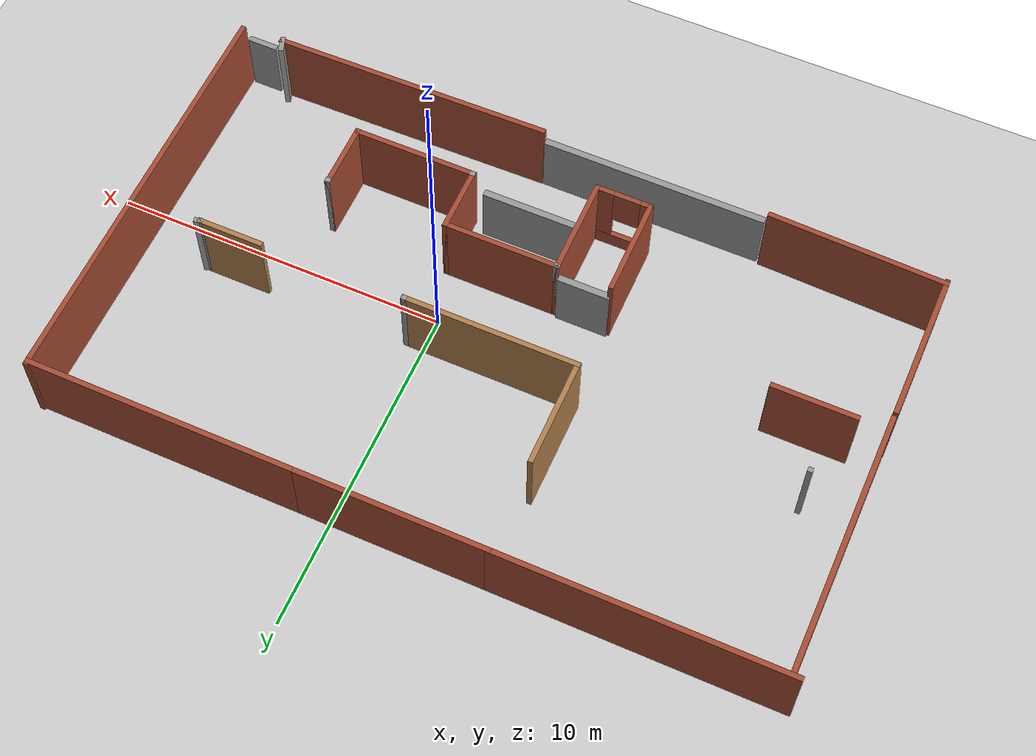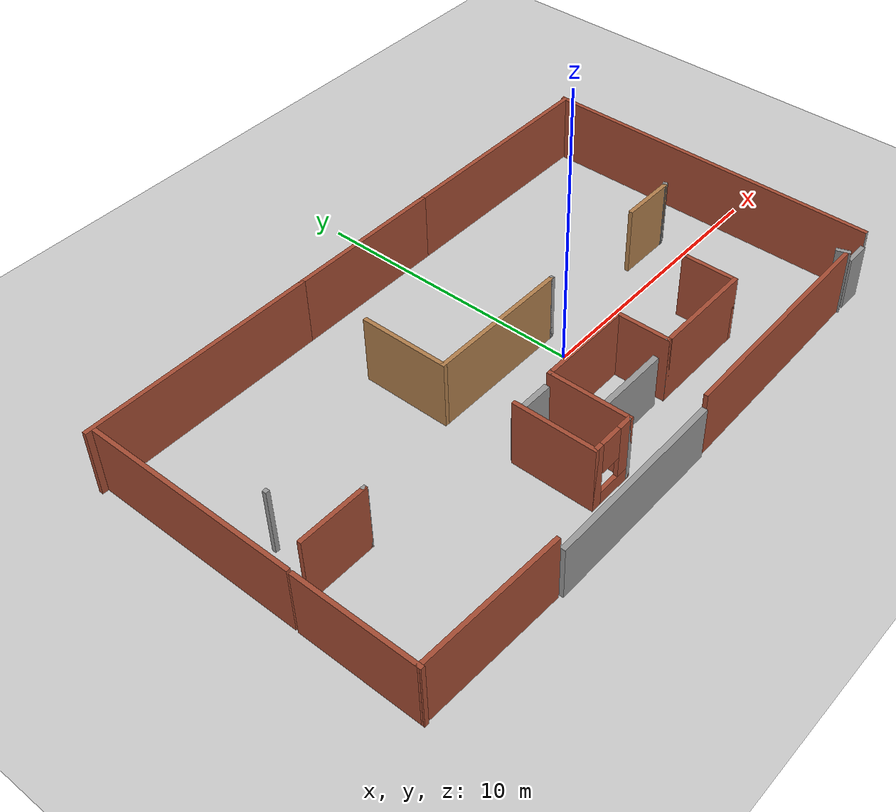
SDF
<sdf version="1.7">
 <world name="default">
  <light name="sun" type="directional">
   <pose>0 0 10 0 -0 0</pose>
   <diffuse>0.8 0.8 0.8 1</diffuse>
   <specular>0.2 0.2 0.2 1</specular>
   <attenuation>
    <range>1000</range>
    <constant>0.9</constant>
    <linear>0.01</linear>
    <quadratic>0.001</quadratic>
   </attenuation>
   <direction>-0.5 0.1 -0.9</direction>
   <spot><inner_angle>0</inner_angle><outer_angle>0</outer_angle><falloff>0</falloff></spot>
  </light>
  <model name="ground_plane">
   <static>1</static>
   <link name="link">
    <collision name="collision">
     <geometry><plane><normal>0 0 1</normal><size>100 100</size></plane></geometry>
     <surface>
      <contact><collide_bitmask>65535</collide_bitmask></contact>
      <friction><ode><mu>100</mu><mu2>50</mu2></ode></friction>
     </surface>
    </collision>
    <visual name="visual">
     <cast_shadows>0</cast_shadows>
     <geometry><plane><normal>0 0 1</normal><size>100 100</size></plane></geometry>
     <material>
      <script><uri>file://media/materials/scripts/gazebo.material</uri><name>Gazebo/Grey</name></script>
     </material>
    </visual>
   </link>
  </model>
  <gravity>0 0 -9.8</gravity>
  <magnetic_field>6e-06 2.3e-05 -4.2e-05</magnetic_field>
  <atmosphere type="adiabatic"/>
  <physics type="ode">
   <max_step_size>0.001</max_step_size>
   <real_time_factor>1</real_time_factor>
   <real_time_update_rate>1000</real_time_update_rate>
  </physics>
  <scene><ambient>0.4 0.4 0.4 1</ambient><background>0.7 0.7 0.7 1</background><shadows>1</shadows></scene>
  <audio><device>default</device></audio>
  <spherical_coordinates>
   <surface_model>EARTH_WGS84</surface_model>
   <latitude_deg>0</latitude_deg>
   <longitude_deg>0</longitude_deg>
   <elevation>0</elevation>
   <heading_deg>0</heading_deg>
  </spherical_coordinates>
  <model name="navigationbuilding">
   <pose>-2.08608 0.60546 0 0 -0 0</pose>
   <link name="Door_0">
    <collision name="Door_0_Collision">
     <geometry><box><size>1.54729 0.2 2</size></box></geometry>
     <pose>0 0 1 0 -0 0</pose>
    </collision>
    <visual name="Door_0_Visual">
     <pose>0 0 1 0 -0 0</pose>
     <geometry><box><size>1.54729 0.2 2</size></box></geometry>
     <material>
      <script><uri>file://media/materials/scripts/gazebo.material</uri><name>Gazebo/Grey</name></script>
     </material>
    </visual>
    <pose>-1.63643 -2.22062 0 0 -0 0</pose>
   </link>
   <link name="Door_1">
    <collision name="Door_1_Collision">
     <geometry><box><size>6.68515 0.2 2</size></box></geometry>
     <pose>0 0 1 0 -0 0</pose>
    </collision>
    <visual name="Door_1_Visual">
     <pose>0 0 1 0 -0 0</pose>
     <geometry><box><size>6.68515 0.2 2</size></box></geometry>
     <material>
      <script><uri>file://media/materials/scripts/gazebo.material</uri><name>Gazebo/Grey</name></script>
     </material>
    </visual>
    <pose>-2.06121 -6.30663 0 0 -0 0</pose>
   </link>
   <link name="Door_3">
    <collision name="Door_3_Collision">
     <geometry><box><size>2.82609 0.2 2</size></box></geometry>
     <pose>0 0 1 0 -0 0</pose>
    </collision>
    <visual name="Door_3_Visual">
     <pose>0 0 1 0 -0 0</pose>
     <geometry><box><size>2.82609 0.2 2</size></box></geometry>
     <material>
      <script><uri>file://media/materials/scripts/gazebo.material</uri><name>Gazebo/Grey</name></script>
     </material>
    </visual>
    <pose>0.750174 -3.97475 0 0 -0 0</pose>
   </link>
   <link name="Door_4">
    <collision name="Door_4_Collision">
     <geometry><box><size>0.9 0.17 2</size></box></geometry>
     <pose>0 0 1 0 -0 0</pose>
    </collision>
    <visual name="Door_4_Visual">
     <pose>0 0 1 0 -0 0</pose>
     <geometry><box><size>0.9 0.17 2</size></box></geometry>
     <material>
      <script><uri>file://media/materials/scripts/gazebo.material</uri><name>Gazebo/Grey</name></script>
     </material>
    </visual>
    <pose>10.3004 -6.16836 0 0 -0 0</pose>
   </link>
   <link name="Wall_0">
    <collision name="Wall_0_Collision">
     <geometry><box><size>4.5 0.15 2.5</size></box></geometry>
     <pose>0 0 1.25 0 -0 0</pose>
    </collision>
    <visual name="Wall_0_Visual">
     <pose>0 0 1.25 0 -0 0</pose>
     <geometry><box><size>4.5 0.15 2.5</size></box></geometry>
     <material>
      <script><uri>file://media/materials/scripts/gazebo.material</uri><name>Gazebo/Bricks</name></script>
      <ambient>1 1 1 1</ambient>
     </material>
     <meta><layer>0</layer></meta>
    </visual>
    <pose>-10.6805 -3.93973 0 0 -0 -1.5708</pose>
   </link>
   <link name="Wall_1">
    <collision name="Wall_1_Collision">
     <geometry><box><size>5.2885 0.15 2.5</size></box></geometry>
     <pose>0 0 1.25 0 -0 0</pose>
    </collision>
    <visual name="Wall_1_Visual">
     <pose>0 0 1.25 0 -0 0</pose>
     <geometry><box><size>5.2885 0.15 2.5</size></box></geometry>
     <material>
      <script><uri>file://media/materials/scripts/gazebo.material</uri><name>Gazebo/Bricks</name></script>
      <ambient>1 1 1 1</ambient>
     </material>
     <meta><layer>0</layer></meta>
    </visual>
    <pose>-8.11246 -6.14148 0 0 -0 -0.031241</pose>
   </link>
   <link name="Wall_3">
    <collision name="Wall_3_Collision">
     <geometry><box><size>2.5 0.15 2.5</size></box></geometry>
     <pose>0 0 1.25 0 -0 0</pose>
    </collision>
    <visual name="Wall_3_Visual">
     <pose>0 0 1.25 0 -0 0</pose>
     <geometry><box><size>2.5 0.15 2.5</size></box></geometry>
     <material>
      <script><uri>file://media/materials/scripts/gazebo.material</uri><name>Gazebo/Bricks</name></script>
      <ambient>1 0.764706 0.305882 1</ambient>
     </material>
     <meta><layer>0</layer></meta>
    </visual>
    <pose>-8.62947 -1.16174 0 0 -0 0</pose>
   </link>
   <link name="Wall_34">
    <collision name="Wall_34_Collision">
     <geometry><box><size>7.75 0.15 2.5</size></box></geometry>
     <pose>0 0 1.25 0 -0 0</pose>
    </collision>
    <visual name="Wall_34_Visual">
     <pose>0 0 1.25 0 -0 0</pose>
     <geometry><box><size>7.75 0.15 2.5</size></box></geometry>
     <material>
      <script><uri>file://media/materials/scripts/gazebo.material</uri><name>Gazebo/Bricks</name></script>
      <ambient>1 0.764706 0.305882 1</ambient>
     </material>
     <meta><layer>0</layer></meta>
    </visual>
    <pose>-10.6693 2.2736 0 0 -0 -1.5708</pose>
   </link>
   <link name="Wall_36">
    <collision name="Wall_36_Collision">
     <geometry><box><size>0.15 0.15 2.5</size></box></geometry>
     <pose>0 0 1.25 0 -0 0</pose>
    </collision>
    <visual name="Wall_36_Visual">
     <pose>0 0 1.25 0 -0 0</pose>
     <geometry><box><size>0.15 0.15 2.5</size></box></geometry>
     <material>
      <script><uri>file://media/materials/scripts/gazebo.material</uri><name>Gazebo/Grey</name></script>
      <ambient>1 1 1 1</ambient>
     </material>
     <meta><layer>0</layer></meta>
    </visual>
    <pose>-9.19378 0.779995 0 0 -0 0</pose>
   </link>
   <link name="Wall_37">
    <collision name="Wall_37_Collision">
     <geometry><box><size>0.15 0.15 2.5</size></box></geometry>
     <pose>0 0 1.25 0 -0 0</pose>
    </collision>
    <visual name="Wall_37_Visual">
     <pose>0 0 1.25 0 -0 0</pose>
     <geometry><box><size>0.15 0.15 2.5</size></box></geometry>
     <material>
      <script><uri>file://media/materials/scripts/gazebo.material</uri><name>Gazebo/Bricks</name></script>
      <ambient>1 0.764706 0.305882 1</ambient>
     </material>
     <meta><layer>0</layer></meta>
    </visual>
    <pose>-9.19378 0.779995 0 0 -0 0</pose>
   </link>
   <link name="Wall_39">
    <collision name="Wall_39_Collision">
     <geometry><box><size>8.5 0.15 2.5</size></box></geometry>
     <pose>0 0 1.25 0 -0 0</pose>
    </collision>
    <visual name="Wall_39_Visual">
     <pose>0 0 1.25 0 -0 0</pose>
     <geometry><box><size>8.5 0.15 2.5</size></box></geometry>
     <material>
      <script><uri>file://media/materials/scripts/gazebo.material</uri><name>Gazebo/Bricks</name></script>
      <ambient>1 1 1 1</ambient>
     </material>
     <meta><layer>0</layer></meta>
    </visual>
    <pose>-6.70604 6.2194 0 0 -0 0</pose>
   </link>
   <link name="Wall_4">
    <collision name="Wall_4_Collision">
     <geometry><box><size>0.16 0.15 2.5</size></box></geometry>
     <pose>0 0 1.25 0 -0 0</pose>
    </collision>
    <visual name="Wall_4_Visual">
     <pose>0 0 1.25 0 -0 0</pose>
     <geometry><box><size>0.16 0.15 2.5</size></box></geometry>
     <material>
      <script><uri>file://media/materials/scripts/gazebo.material</uri><name>Gazebo/Grey</name></script>
      <ambient>1 1 1 1</ambient>
     </material>
     <meta><layer>0</layer></meta>
    </visual>
    <pose>-7.44947 -1.16174 0 0 -0 0</pose>
   </link>
   <link name="Wall_40">
    <collision name="Wall_40_Collision">
     <geometry><box><size>5.75 0.15 2.5</size></box></geometry>
     <pose>0 0 1.25 0 -0 0</pose>
    </collision>
    <visual name="Wall_40_Visual">
     <pose>0 0 1.25 0 -0 0</pose>
     <geometry><box><size>5.75 0.15 2.5</size></box></geometry>
     <material>
      <script><uri>file://media/materials/scripts/gazebo.material</uri><name>Gazebo/Bricks</name></script>
      <ambient>1 1 1 1</ambient>
     </material>
     <meta><layer>0</layer></meta>
    </visual>
    <pose>0.26896 6.2194 0 0 -0 0</pose>
   </link>
   <link name="Wall_41">
    <collision name="Wall_41_Collision">
     <geometry><box><size>7.96208 0.15 2.5</size></box></geometry>
     <pose>0 0 1.25 0 -0 0</pose>
    </collision>
    <visual name="Wall_41_Visual">
     <pose>0 0 1.25 0 -0 0</pose>
     <geometry><box><size>7.96208 0.15 2.5</size></box></geometry>
     <material>
      <script><uri>file://media/materials/scripts/gazebo.material</uri><name>Gazebo/Bricks</name></script>
      <ambient>1 1 1 1</ambient>
     </material>
     <meta><layer>0</layer></meta>
    </visual>
    <pose>6.975 6.2194 0 0 -0 0</pose>
   </link>
   <link name="Wall_42">
    <collision name="Wall_42_Collision">
     <geometry><box><size>12.5 0.15 2.5</size></box></geometry>
     <pose>0 0 1.25 0 -0 0</pose>
    </collision>
    <visual name="Wall_42_Visual">
     <pose>0 0 1.25 0 -0 0</pose>
     <geometry><box><size>12.5 0.15 2.5</size></box></geometry>
     <material>
      <script><uri>file://media/materials/scripts/gazebo.material</uri><name>Gazebo/Bricks</name></script>
      <ambient>1 1 1 1</ambient>
     </material>
     <meta><layer>0</layer></meta>
    </visual>
    <pose>10.881 0.097902 0 0 -0 -1.5708</pose>
   </link>
   <link name="Wall_43">
    <collision name="Wall_43_Collision">
     <geometry><box><size>0.15 0.15 2.5</size></box></geometry>
     <pose>0 0 1.25 0 -0 0</pose>
    </collision>
    <visual name="Wall_43_Visual">
     <pose>0 0 1.25 0 -0 0</pose>
     <geometry><box><size>0.15 0.15 2.5</size></box></geometry>
     <material>
      <script><uri>file://media/materials/scripts/gazebo.material</uri><name>Gazebo/Grey</name></script>
      <ambient>1 1 1 1</ambient>
     </material>
     <meta><layer>0</layer></meta>
    </visual>
    <pose>10.881 -6.0771 0 0 -0 0</pose>
   </link>
   <link name="Wall_48">
    <collision name="Wall_48_Collision">
     <geometry><box><size>3.25 0.15 2.5</size></box></geometry>
     <pose>0 0 1.25 0 -0 0</pose>
    </collision>
    <visual name="Wall_48_Visual">
     <pose>0 0 1.25 0 -0 0</pose>
     <geometry><box><size>3.25 0.15 2.5</size></box></geometry>
     <material>
      <script><uri>file://media/materials/scripts/gazebo.material</uri><name>Gazebo/Wood</name></script>
      <ambient>0.435294 0.796078 0.67451 1</ambient>
     </material>
     <meta><layer>0</layer></meta>
    </visual>
    <pose>-2.51338 1.90522 0 0 -0 -1.5708</pose>
   </link>
   <link name="Wall_49">
    <collision name="Wall_49_Collision">
     <geometry><box><size>5.25 0.15 2.5</size></box></geometry>
     <pose>0 0 1.25 0 -0 0</pose>
    </collision>
    <visual name="Wall_49_Visual">
     <pose>0 0 1.25 0 -0 0</pose>
     <geometry><box><size>5.25 0.15 2.5</size></box></geometry>
     <material>
      <script><uri>file://media/materials/scripts/gazebo.material</uri><name>Gazebo/Wood</name></script>
      <ambient>0.435294 0.796078 0.67451 1</ambient>
     </material>
     <meta><layer>0</layer></meta>
    </visual>
    <pose>0.03662 0.355225 0 0 -0 0</pose>
   </link>
   <link name="Wall_50">
    <collision name="Wall_50_Collision">
     <geometry><box><size>0.15 0.15 2.5</size></box></geometry>
     <pose>0 0 1.25 0 -0 0</pose>
    </collision>
    <visual name="Wall_50_Visual">
     <pose>0 0 1.25 0 -0 0</pose>
     <geometry><box><size>0.15 0.15 2.5</size></box></geometry>
     <material>
      <script><uri>file://media/materials/scripts/gazebo.material</uri><name>Gazebo/Grey</name></script>
      <ambient>1 1 1 1</ambient>
     </material>
     <meta><layer>0</layer></meta>
    </visual>
    <pose>2.58662 0.355225 0 0 -0 0</pose>
   </link>
   <link name="Wall_51">
    <collision name="Wall_51_Collision">
     <geometry><box><size>0.16 0.15 2.5</size></box></geometry>
     <pose>0 0 1.25 0 -0 0</pose>
    </collision>
    <visual name="Wall_51_Visual">
     <pose>0 0 1.25 0 -0 0</pose>
     <geometry><box><size>0.16 0.15 2.5</size></box></geometry>
     <material>
      <script><uri>file://media/materials/scripts/gazebo.material</uri><name>Gazebo/Grey</name></script>
      <ambient>1 1 1 1</ambient>
     </material>
     <meta><layer>0</layer></meta>
    </visual>
    <pose>2.59162 0.355225 0 0 -0 0</pose>
   </link>
   <link name="Wall_53">
    <collision name="Wall_53_Collision">
     <geometry><box><size>2 0.15 2.5</size></box></geometry>
     <pose>0 0 1.25 0 -0 0</pose>
    </collision>
    <visual name="Wall_53_Visual">
     <pose>0 0 1.25 0 -0 0</pose>
     <geometry><box><size>2 0.15 2.5</size></box></geometry>
     <material>
      <script><uri>file://media/materials/scripts/gazebo.material</uri><name>Gazebo/Wood</name></script>
      <ambient>0.435294 0.796078 0.67451 1</ambient>
     </material>
     <meta><layer>0</layer></meta>
    </visual>
    <pose>7.88156 0.405583 0 0 -0 0</pose>
   </link>
   <link name="Wall_54">
    <collision name="Wall_54_Collision">
     <geometry><box><size>0.16 0.15 2.5</size></box></geometry>
     <pose>0 0 1.25 0 -0 0</pose>
    </collision>
    <visual name="Wall_54_Visual">
     <pose>0 0 1.25 0 -0 0</pose>
     <geometry><box><size>0.16 0.15 2.5</size></box></geometry>
     <material>
      <script><uri>file://media/materials/scripts/gazebo.material</uri><name>Gazebo/Grey</name></script>
      <ambient>1 1 1 1</ambient>
     </material>
     <meta><layer>0</layer></meta>
    </visual>
    <pose>8.81156 0.405583 0 0 -0 0</pose>
   </link>
   <link name="Wall_55">
    <collision name="Wall_55_Collision">
     <geometry><box><size>0.25 0.15 2.5</size></box></geometry>
     <pose>0 0 1.25 0 -0 0</pose>
    </collision>
    <visual name="Wall_55_Visual">
     <pose>0 0 1.25 0 -0 0</pose>
     <geometry><box><size>0.25 0.15 2.5</size></box></geometry>
     <material>
      <script><uri>file://media/materials/scripts/gazebo.material</uri><name>Gazebo/Grey</name></script>
      <ambient>1 1 1 1</ambient>
     </material>
     <meta><layer>0</layer></meta>
    </visual>
    <pose>8.86486 0.418524 0 0 -0 0.261799</pose>
   </link>
   <link name="Wall_57">
    <collision name="Wall_57_Collision">
     <geometry><box><size>8.40495 0.15 2.5</size></box></geometry>
     <pose>0 0 1.25 0 -0 0</pose>
    </collision>
    <visual name="Wall_57_Visual">
     <pose>0 0 1.25 0 -0 0</pose>
     <geometry><box><size>8.40495 0.15 2.5</size></box></geometry>
     <material>
      <script><uri>file://media/materials/scripts/gazebo.material</uri><name>Gazebo/Bricks</name></script>
      <ambient>1 1 1 1</ambient>
     </material>
     <meta><layer>0</layer></meta>
    </visual>
    <pose>5.49349 -6.21113 0 0 -0 0.014702</pose>
   </link>
   <link name="Wall_58">
    <collision name="Wall_58_Collision">
     <geometry><box><size>0.492269 0.15 2.5</size></box></geometry>
     <pose>0 0 1.25 0 -0 0</pose>
    </collision>
    <visual name="Wall_58_Visual">
     <pose>0 0 1.25 0 -0 0</pose>
     <geometry><box><size>0.492269 0.15 2.5</size></box></geometry>
     <material>
      <script><uri>file://media/materials/scripts/gazebo.material</uri><name>Gazebo/Grey</name></script>
      <ambient>1 1 1 1</ambient>
     </material>
     <meta><layer>0</layer></meta>
    </visual>
    <pose>9.56508 -6.02908 0 0 -0 1.90221</pose>
   </link>
   <link name="Wall_60">
    <collision name="Wall_60_Collision">
     <geometry><box><size>3 0.15 2.5</size></box></geometry>
     <pose>0 0 1.25 0 -0 0</pose>
    </collision>
    <visual name="Wall_60_Visual">
     <pose>0 0 1.25 0 -0 0</pose>
     <geometry><box><size>3 0.15 2.5</size></box></geometry>
     <material>
      <script><uri>file://media/materials/scripts/gazebo.material</uri><name>Gazebo/Bricks</name></script>
      <ambient>1 1 1 1</ambient>
     </material>
     <meta><layer>0</layer></meta>
    </visual>
    <pose>-2.40509 -3.68608 0 0 -0 -1.5708</pose>
   </link>
   <link name="Wall_61">
    <pose>-1.60509 -5.11108 0 0 -0 0</pose>
    <visual name="Wall_61_Visual_0">
     <pose>-0.693628 0 1.25 0 -0 0</pose>
     <geometry><box><size>0.362745 0.15 2.5</size></box></geometry>
     <material>
      <script><uri>file://media/materials/scripts/gazebo.material</uri><name>Gazebo/Bricks</name></script>
      <ambient>1 1 1 1</ambient>
     </material>
     <meta><layer>0</layer></meta>
    </visual>
    <collision name="Wall_61_Collision_0">
     <geometry><box><size>0.362745 0.15 2.5</size></box></geometry>
     <pose>-0.693628 0 1.25 0 -0 0</pose>
    </collision>
    <visual name="Wall_61_Visual_1">
     <pose>0.181372 0 0.25 0 -0 0</pose>
     <geometry><box><size>1.38725 0.15 0.5</size></box></geometry>
     <material>
      <script><uri>file://media/materials/scripts/gazebo.material</uri><name>Gazebo/Bricks</name></script>
      <ambient>1 1 1 1</ambient>
     </material>
     <meta><layer>0</layer></meta>
    </visual>
    <collision name="Wall_61_Collision_1">
     <geometry><box><size>1.38725 0.15 0.5</size></box></geometry>
     <pose>0.181372 0 0.25 0 -0 0</pose>
    </collision>
    <visual name="Wall_61_Visual_2">
     <pose>0.581372 0 1.5 0 -0 0</pose>
     <geometry><box><size>0.587255 0.15 2</size></box></geometry>
     <material>
      <script><uri>file://media/materials/scripts/gazebo.material</uri><name>Gazebo/Bricks</name></script>
      <ambient>1 1 1 1</ambient>
     </material>
     <meta><layer>0</layer></meta>
    </visual>
    <collision name="Wall_61_Collision_2">
     <geometry><box><size>0.587255 0.15 2</size></box></geometry>
     <pose>0.581372 0 1.5 0 -0 0</pose>
    </collision>
    <visual name="Wall_61_Visual_3">
     <pose>-0.112255 0 1.9 0 -0 0</pose>
     <geometry><box><size>0.8 0.15 1.2</size></box></geometry>
     <material>
      <script><uri>file://media/materials/scripts/gazebo.material</uri><name>Gazebo/Bricks</name></script>
      <ambient>1 1 1 1</ambient>
     </material>
     <meta><layer>0</layer></meta>
    </visual>
    <collision name="Wall_61_Collision_3">
     <geometry><box><size>0.8 0.15 1.2</size></box></geometry>
     <pose>-0.112255 0 1.9 0 -0 0</pose>
    </collision>
   </link>
   <link name="Wall_62">
    <collision name="Wall_62_Collision">
     <geometry><box><size>0.16 0.15 2.5</size></box></geometry>
     <pose>0 0 1.25 0 -0 0</pose>
    </collision>
    <visual name="Wall_62_Visual">
     <pose>0 0 1.25 0 -0 0</pose>
     <geometry><box><size>0.16 0.15 2.5</size></box></geometry>
     <material>
      <script><uri>file://media/materials/scripts/gazebo.material</uri><name>Gazebo/Grey</name></script>
      <ambient>1 1 1 1</ambient>
     </material>
     <meta><layer>0</layer></meta>
    </visual>
    <pose>-0.800086 -5.11108 0 0 -0 0</pose>
   </link>
   <link name="Wall_63">
    <collision name="Wall_63_Collision">
     <geometry><box><size>3 0.15 2.5</size></box></geometry>
     <pose>0 0 1.25 0 -0 0</pose>
    </collision>
    <visual name="Wall_63_Visual">
     <pose>0 0 1.25 0 -0 0</pose>
     <geometry><box><size>3 0.15 2.5</size></box></geometry>
     <material>
      <script><uri>file://media/materials/scripts/gazebo.material</uri><name>Gazebo/Bricks</name></script>
      <ambient>1 1 1 1</ambient>
     </material>
     <meta><layer>0</layer></meta>
    </visual>
    <pose>-0.795086 -3.68608 0 0 -0 1.5708</pose>
   </link>
   <link name="Wall_64">
    <collision name="Wall_64_Collision">
     <geometry><box><size>0.16 0.15 2.5</size></box></geometry>
     <pose>0 0 1.25 0 -0 0</pose>
    </collision>
    <visual name="Wall_64_Visual">
     <pose>0 0 1.25 0 -0 0</pose>
     <geometry><box><size>0.16 0.15 2.5</size></box></geometry>
     <material>
      <script><uri>file://media/materials/scripts/gazebo.material</uri><name>Gazebo/Grey</name></script>
      <ambient>1 1 1 1</ambient>
     </material>
     <meta><layer>0</layer></meta>
    </visual>
    <pose>-0.790086 -2.26108 0 0 -0 0</pose>
   </link>
   <link name="Wall_65">
    <collision name="Wall_65_Collision">
     <geometry><box><size>0.16 0.15 2.5</size></box></geometry>
     <pose>0 0 1.25 0 -0 0</pose>
    </collision>
    <visual name="Wall_65_Visual">
     <pose>0 0 1.25 0 -0 0</pose>
     <geometry><box><size>0.16 0.15 2.5</size></box></geometry>
     <material>
      <script><uri>file://media/materials/scripts/gazebo.material</uri><name>Gazebo/Grey</name></script>
      <ambient>1 1 1 1</ambient>
     </material>
     <meta><layer>0</layer></meta>
    </visual>
    <pose>-0.780086 -2.26108 0 0 -0 0</pose>
   </link>
   <link name="Wall_67">
    <collision name="Wall_67_Collision">
     <geometry><box><size>3.5 0.15 2.5</size></box></geometry>
     <pose>0 0 1.25 0 -0 0</pose>
    </collision>
    <visual name="Wall_67_Visual">
     <pose>0 0 1.25 0 -0 0</pose>
     <geometry><box><size>3.5 0.15 2.5</size></box></geometry>
     <material>
      <script><uri>file://media/materials/scripts/gazebo.material</uri><name>Gazebo/Bricks</name></script>
      <ambient>1 1 1 1</ambient>
     </material>
     <meta><layer>0</layer></meta>
    </visual>
    <pose>0.889914 -2.26108 0 0 -0 0</pose>
   </link>
   <link name="Wall_68">
    <collision name="Wall_68_Collision">
     <geometry><box><size>2 0.15 2.5</size></box></geometry>
     <pose>0 0 1.25 0 -0 0</pose>
    </collision>
    <visual name="Wall_68_Visual">
     <pose>0 0 1.25 0 -0 0</pose>
     <geometry><box><size>2 0.15 2.5</size></box></geometry>
     <material>
      <script><uri>file://media/materials/scripts/gazebo.material</uri><name>Gazebo/Bricks</name></script>
      <ambient>1 1 1 1</ambient>
     </material>
     <meta><layer>0</layer></meta>
    </visual>
    <pose>2.56491 -3.18608 0 0 -0 -1.5708</pose>
   </link>
   <link name="Wall_69">
    <collision name="Wall_69_Collision">
     <geometry><box><size>0.16 0.15 2.5</size></box></geometry>
     <pose>0 0 1.25 0 -0 0</pose>
    </collision>
    <visual name="Wall_69_Visual">
     <pose>0 0 1.25 0 -0 0</pose>
     <geometry><box><size>0.16 0.15 2.5</size></box></geometry>
     <material>
      <script><uri>file://media/materials/scripts/gazebo.material</uri><name>Gazebo/Grey</name></script>
      <ambient>1 1 1 1</ambient>
     </material>
     <meta><layer>0</layer></meta>
    </visual>
    <pose>2.56991 -4.11108 0 0 -0 0</pose>
   </link>
   <link name="Wall_70">
    <collision name="Wall_70_Collision">
     <geometry><box><size>3.75 0.15 2.5</size></box></geometry>
     <pose>0 0 1.25 0 -0 0</pose>
    </collision>
    <visual name="Wall_70_Visual">
     <pose>0 0 1.25 0 -0 0</pose>
     <geometry><box><size>3.75 0.15 2.5</size></box></geometry>
     <material>
      <script><uri>file://media/materials/scripts/gazebo.material</uri><name>Gazebo/Bricks</name></script>
      <ambient>1 1 1 1</ambient>
     </material>
     <meta><layer>0</layer></meta>
    </visual>
    <pose>4.37491 -4.11108 0 0 -0 0</pose>
   </link>
   <link name="Wall_71">
    <collision name="Wall_71_Collision">
     <geometry><box><size>2 0.15 2.5</size></box></geometry>
     <pose>0 0 1.25 0 -0 0</pose>
    </collision>
    <visual name="Wall_71_Visual">
     <pose>0 0 1.25 0 -0 0</pose>
     <geometry><box><size>2 0.15 2.5</size></box></geometry>
     <material>
      <script><uri>file://media/materials/scripts/gazebo.material</uri><name>Gazebo/Bricks</name></script>
      <ambient>1 1 1 1</ambient>
     </material>
     <meta><layer>0</layer></meta>
    </visual>
    <pose>6.17491 -3.18608 0 0 -0 1.5708</pose>
   </link>
   <link name="Wall_72">
    <collision name="Wall_72_Collision">
     <geometry><box><size>0.16 0.15 2.5</size></box></geometry>
     <pose>0 0 1.25 0 -0 0</pose>
    </collision>
    <visual name="Wall_72_Visual">
     <pose>0 0 1.25 0 -0 0</pose>
     <geometry><box><size>0.16 0.15 2.5</size></box></geometry>
     <material>
      <script><uri>file://media/materials/scripts/gazebo.material</uri><name>Gazebo/Grey</name></script>
      <ambient>1 1 1 1</ambient>
     </material>
     <meta><layer>0</layer></meta>
    </visual>
    <pose>6.17992 -2.26108 0 0 -0 0</pose>
   </link>
   <link name="Wall_73">
    <collision name="Wall_73_Collision">
     <geometry><box><size>0.16 0.15 2.5</size></box></geometry>
     <pose>0 0 1.25 0 -0 0</pose>
    </collision>
    <visual name="Wall_73_Visual">
     <pose>0 0 1.25 0 -0 0</pose>
     <geometry><box><size>0.16 0.15 2.5</size></box></geometry>
     <material>
      <script><uri>file://media/materials/scripts/gazebo.material</uri><name>Gazebo/Grey</name></script>
      <ambient>1 1 1 1</ambient>
     </material>
     <meta><layer>0</layer></meta>
    </visual>
    <pose>6.18991 -2.26108 0 0 -0 0</pose>
   </link>
   <static>1</static>
  </model>
 </world>
</sdf>
